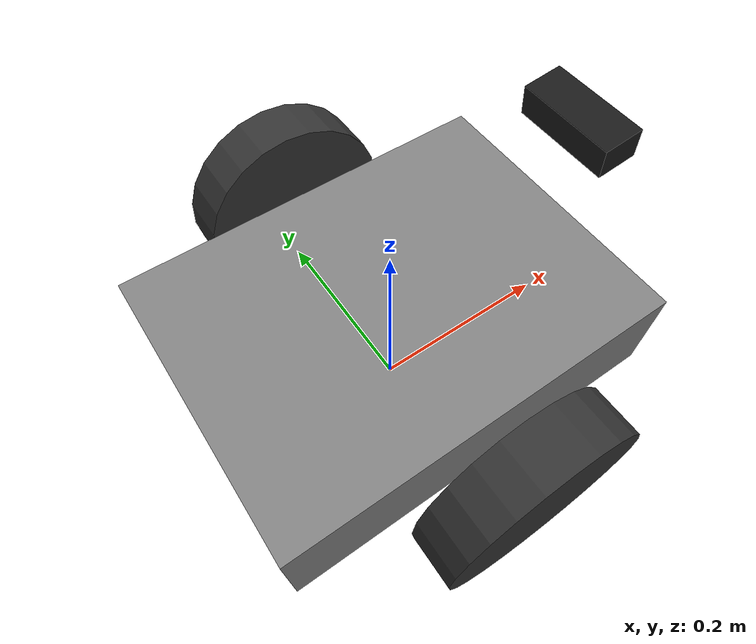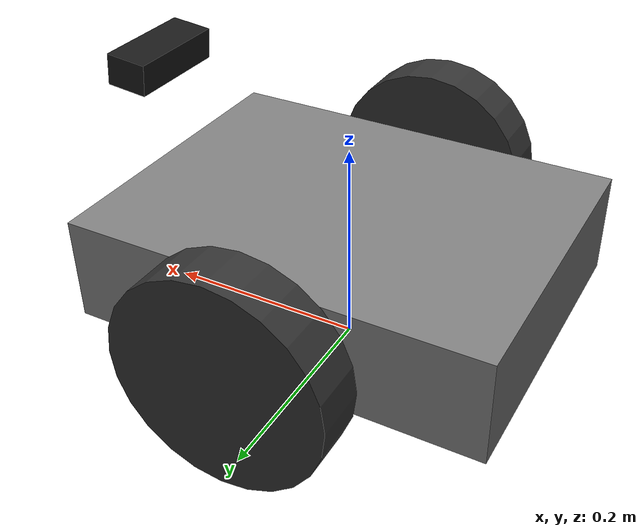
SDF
<?xml version="1.0" ?>
<sdf version="1.9">
  <model name="depth_camera_robot">
    <static>false</static>
    <pose>0 0 0.1 0 0 0</pose>

    <!-- Base Link (same as lidar_robot) -->
    <link name="base_link">
      <inertial>
        <mass>10.0</mass>
        <inertia>
          <ixx>0.167</ixx>
          <ixy>0</ixy>
          <ixz>0</ixz>
          <iyy>0.167</iyy>
          <iyz>0</iyz>
          <izz>0.25</izz>
        </inertia>
      </inertial>
      <collision name="base_collision">
        <geometry>
          <box><size>0.4 0.3 0.1</size></box>
        </geometry>
      </collision>
      <visual name="base_visual">
        <geometry>
          <box><size>0.4 0.3 0.1</size></box>
        </geometry>
        <material>
          <ambient>0.3 0.3 0.3 1</ambient>
          <diffuse>0.5 0.5 0.5 1</diffuse>
        </material>
      </visual>
    </link>

    <link name="camera_link">
      <!--
        Pose relative to base_link:
        - X: 0.2 (front of robot)
        - Z: 0.15 (elevated for better view)
        - Pitch: -0.1 rad (~-6°, tilted down)
      -->
      <pose relative_to="base_link">0.2 0 0.15 0 -0.1 0</pose>

      <inertial>
        <mass>0.2</mass>
        <inertia>
          <ixx>0.0001</ixx>
          <ixy>0</ixy>
          <ixz>0</ixz>
          <iyy>0.0001</iyy>
          <iyz>0</iyz>
          <izz>0.0001</izz>
        </inertia>
      </inertial>

      <collision name="camera_collision">
        <geometry>
          <box><size>0.04 0.1 0.03</size></box>
        </geometry>
      </collision>

      <visual name="camera_visual">
        <geometry>
          <box><size>0.04 0.1 0.03</size></box>
        </geometry>
        <material>
          <ambient>0.0 0.0 0.0 1</ambient>
          <diffuse>0.1 0.1 0.1 1</diffuse>
        </material>
      </visual>

      <sensor name="depth_camera" type="depth_camera">
        <always_on>true</always_on>
        <update_rate>30</update_rate>  <!-- 30 FPS -->
        <visualize>true</visualize>
        <topic>camera</topic>

        <camera>
          <horizontal_fov>1.047</horizontal_fov>
          <image>
            <width>640</width>
            <height>480</height>
            <format>R8G8B8</format>  <!-- RGB 8-bit per channel -->
          </image>

          <clip>
            <near>0.1</near>   <!-- 10cm minimum -->
            <far>10.0</far>    <!-- 10m maximum -->
          </clip>

          <depth_camera>
            <clip>
              <near>0.1</near>
              <far>10.0</far>
            </clip>
          </depth_camera>

          <noise>
            <type>gaussian</type>
            <mean>0.0</mean>
            <stddev>0.005</stddev>  <!-- ±5mm depth noise -->
          </noise>

          <lens>
            <intrinsics>
              <fx>554.26</fx>
              <fy>554.26</fy>
              <cx>320.0</cx>
              <cy>240.0</cy>
              <s>0</s>  <!-- Skew coefficient (usually 0) -->
            </intrinsics>
          </lens>
        </camera>
      </sensor>

      <sensor name="rgb_camera" type="camera">
        <always_on>true</always_on>
        <update_rate>30</update_rate>
        <visualize>false</visualize>
        <topic>camera/color</topic>

        <camera>
          <horizontal_fov>1.047</horizontal_fov>
          <image>
            <width>640</width>
            <height>480</height>
            <format>R8G8B8</format>
          </image>
          <clip>
            <near>0.01</near>
            <far>100.0</far>
          </clip>
          <noise>
            <type>gaussian</type>
            <mean>0.0</mean>
            <stddev>0.007</stddev>  <!-- Typical camera noise -->
          </noise>
        </camera>
      </sensor>
    </link>

    <!-- Fixed joint connecting camera to base -->
    <joint name="camera_joint" type="fixed">
      <parent>base_link</parent>
      <child>camera_link</child>
    </joint>

    <!--
      ============================================================
      WHEELS (simplified - same structure as lidar_robot)
      ============================================================
    -->

    <link name="left_wheel">
      <pose relative_to="base_link">0 0.2 0 1.5708 0 0</pose>
      <inertial>
        <mass>0.5</mass>
        <inertia>
          <ixx>0.001</ixx><ixy>0</ixy><ixz>0</ixz>
          <iyy>0.001</iyy><iyz>0</iyz><izz>0.002</izz>
        </inertia>
      </inertial>
      <collision name="left_wheel_collision">
        <geometry><cylinder><radius>0.1</radius><length>0.05</length></cylinder></geometry>
        <surface><friction><ode><mu>1.0</mu></ode></friction></surface>
      </collision>
      <visual name="left_wheel_visual">
        <geometry><cylinder><radius>0.1</radius><length>0.05</length></cylinder></geometry>
        <material><diffuse>0.2 0.2 0.2 1</diffuse></material>
      </visual>
    </link>

    <joint name="left_wheel_joint" type="revolute">
      <parent>base_link</parent>
      <child>left_wheel</child>
      <axis><xyz>0 0 1</xyz><limit><effort>10</effort><velocity>10</velocity></limit></axis>
    </joint>

    <link name="right_wheel">
      <pose relative_to="base_link">0 -0.2 0 1.5708 0 0</pose>
      <inertial>
        <mass>0.5</mass>
        <inertia>
          <ixx>0.001</ixx><ixy>0</ixy><ixz>0</ixz>
          <iyy>0.001</iyy><iyz>0</iyz><izz>0.002</izz>
        </inertia>
      </inertial>
      <collision name="right_wheel_collision">
        <geometry><cylinder><radius>0.1</radius><length>0.05</length></cylinder></geometry>
        <surface><friction><ode><mu>1.0</mu></ode></friction></surface>
      </collision>
      <visual name="right_wheel_visual">
        <geometry><cylinder><radius>0.1</radius><length>0.05</length></cylinder></geometry>
        <material><diffuse>0.2 0.2 0.2 1</diffuse></material>
      </visual>
    </link>

    <joint name="right_wheel_joint" type="revolute">
      <parent>base_link</parent>
      <child>right_wheel</child>
      <axis><xyz>0 0 1</xyz><limit><effort>10</effort><velocity>10</velocity></limit></axis>
    </joint>

    <!-- Plugins -->
    <plugin filename="gz-sim-diff-drive-system" name="gz::sim::systems::DiffDrive">
      <left_joint>left_wheel_joint</left_joint>
      <right_joint>right_wheel_joint</right_joint>
      <wheel_separation>0.4</wheel_separation>
      <wheel_radius>0.1</wheel_radius>
      <topic>cmd_vel</topic>
    </plugin>

  </model>
</sdf>
